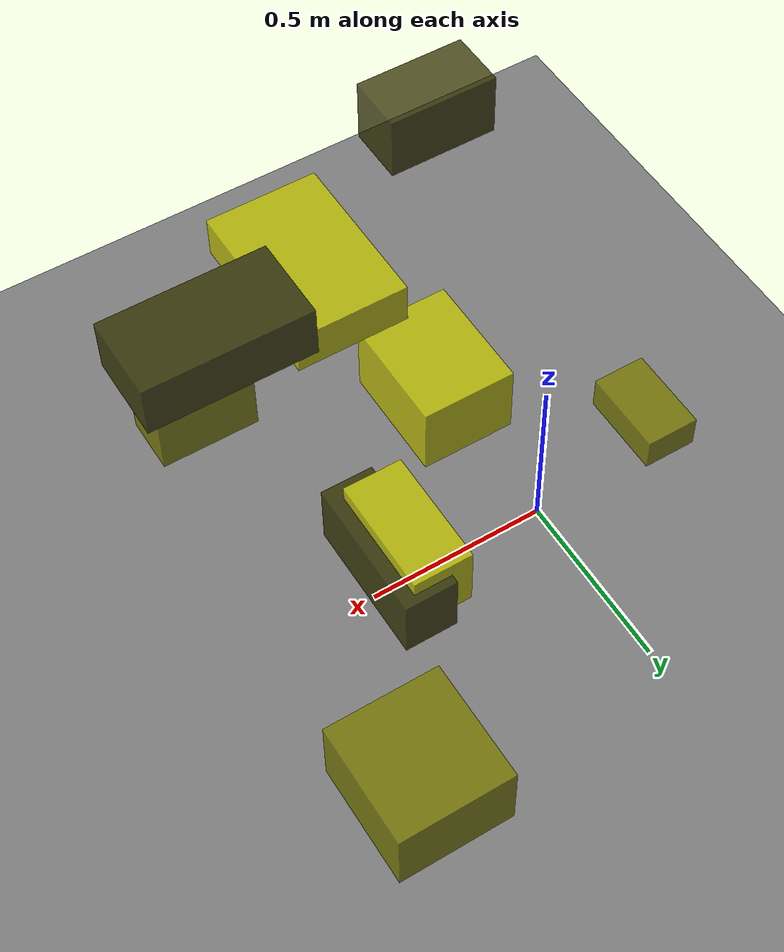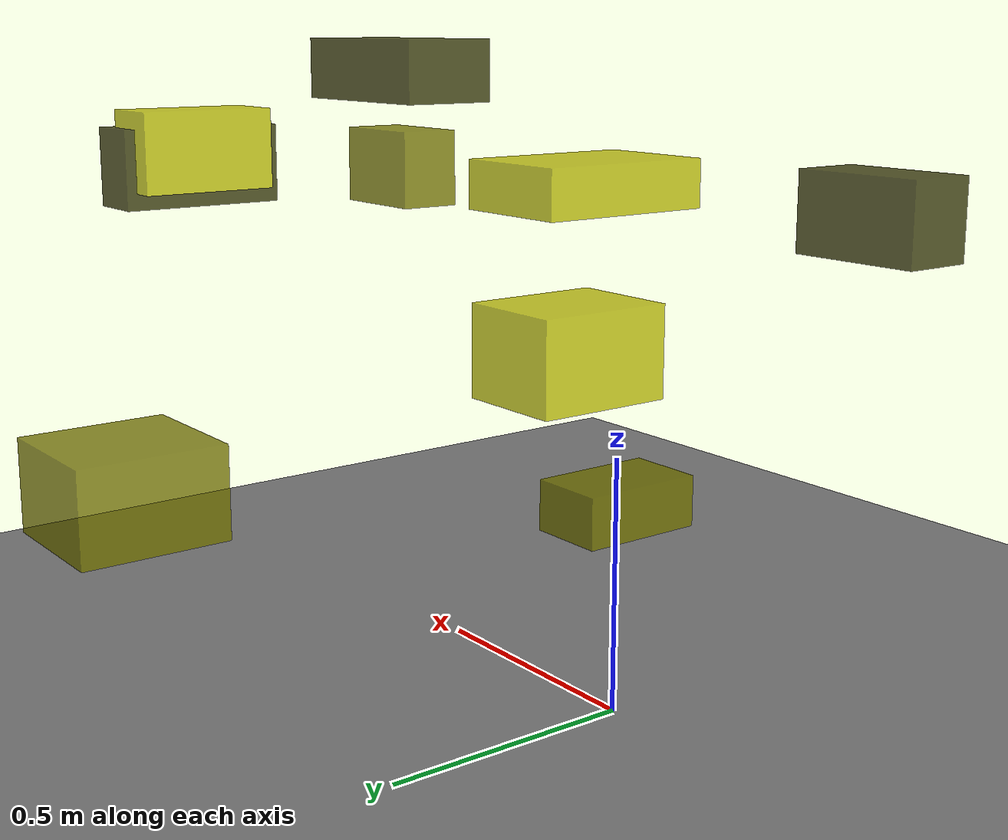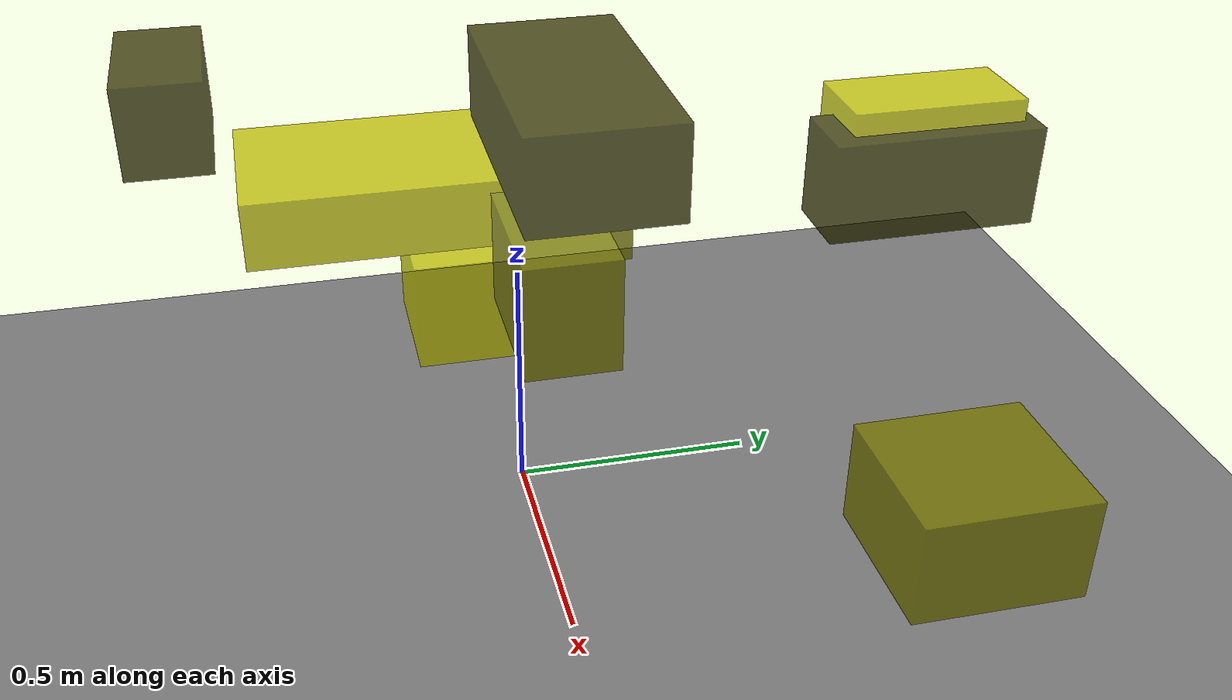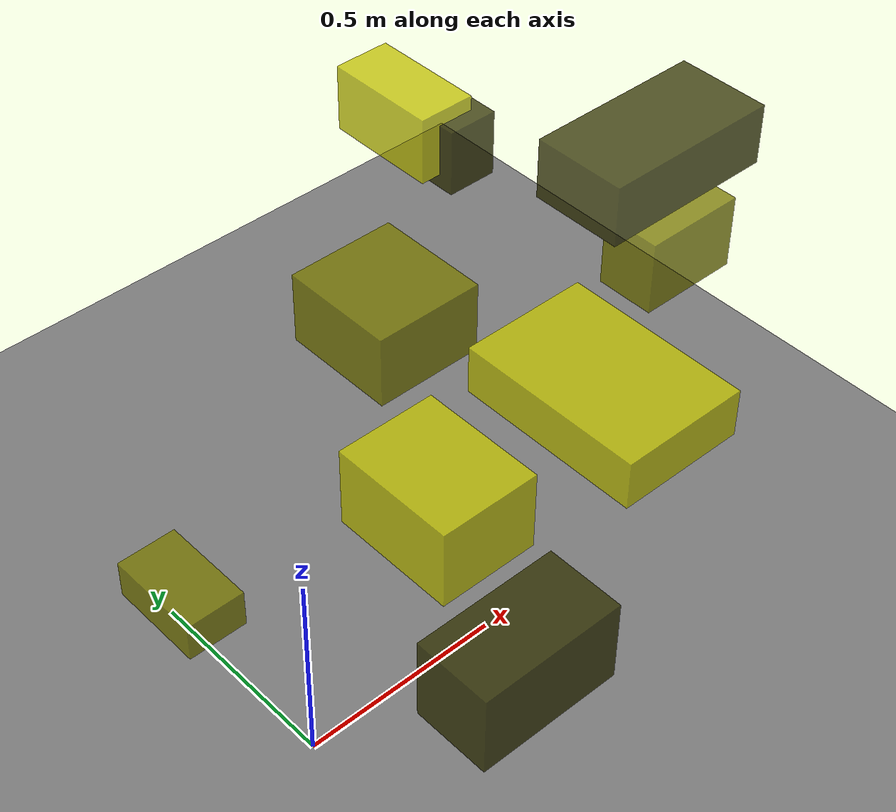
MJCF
<?xml version="1.0"?>
<mujoco model="obstacle_scene">
  <compiler angle="radian" coordinate="local"/>
  <option timestep="0.001" gravity="0 0 -9.81"/>

  <asset>
    <material name="obstacle_mat" rgba="0.8 0.8 0.0 0.8"/>
    <material name="ground_mat" rgba="0.5 0.5 0.5 1"/>
  </asset>

  <worldbody>
    <!-- Ground plane -->
    <geom name="ground" type="plane" size="3 3 0.1" material="ground_mat"/>

    <!-- Obstacles -->
    <body name="obstacle_0" pos="0.824894 -0.073785 1.183005">
      <geom name="obs_0" type="box" size="0.197079 0.102896 0.066020" rgba="0.2 0.2 0.0 0.8"/>
    </body>
    <body name="obstacle_1" pos="0.863419 -0.105671 0.968472">
      <geom name="obs_1" type="box" size="0.113751 0.065933 0.082568" rgba="0.5 0.5 0.0 0.8"/>
    </body>
    <body name="obstacle_2" pos="0.695147 0.485702 1.044640">
      <geom name="obs_2" type="box" size="0.066081 0.131889 0.077064" rgba="0.8 0.8 0.0 0.8"/>
    </body>
    <body name="obstacle_3" pos="-0.054821 -0.639488 0.907010">
      <geom name="obs_3" type="box" size="0.146918 0.079269 0.087060" rgba="0.2 0.2 0.0 0.8"/>
    </body>
    <body name="obstacle_4" pos="-0.176918 0.156932 0.488913">
      <geom name="obs_4" type="box" size="0.068268 0.111644 0.044596" rgba="0.5 0.5 0.0 0.8"/>
    </body>
    <body name="obstacle_5" pos="0.262273 -0.097004 0.645015">
      <geom name="obs_5" type="box" size="0.118588 0.149443 0.097003" rgba="0.8 0.8 0.0 0.8"/>
    </body>
    <body name="obstacle_6" pos="0.733856 0.477457 1.011921">
      <geom name="obs_6" type="box" size="0.058299 0.159444 0.075925" rgba="0.2 0.2 0.0 0.8"/>
    </body>
    <body name="obstacle_7" pos="0.762316 0.635810 0.370985">
      <geom name="obs_7" type="box" size="0.149370 0.157804 0.099593" rgba="0.5 0.5 0.0 0.8"/>
    </body>
    <body name="obstacle_8" pos="0.468961 -0.311137 0.947521">
      <geom name="obs_8" type="box" size="0.140364 0.203727 0.053485" rgba="0.8 0.8 0.0 0.8"/>
    </body>
  </worldbody>
</mujoco>
